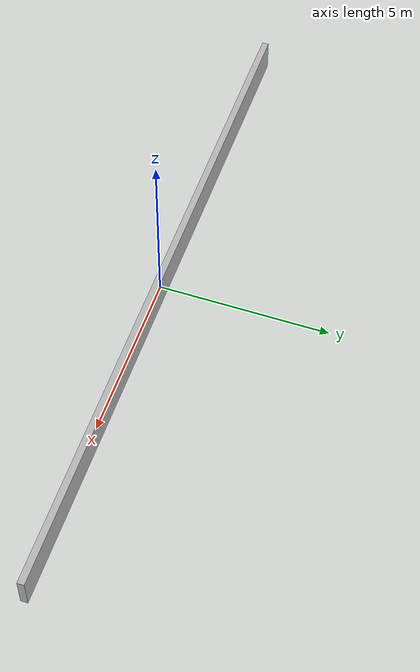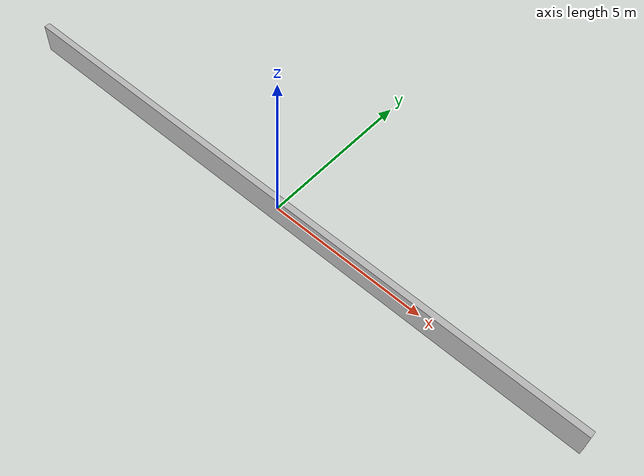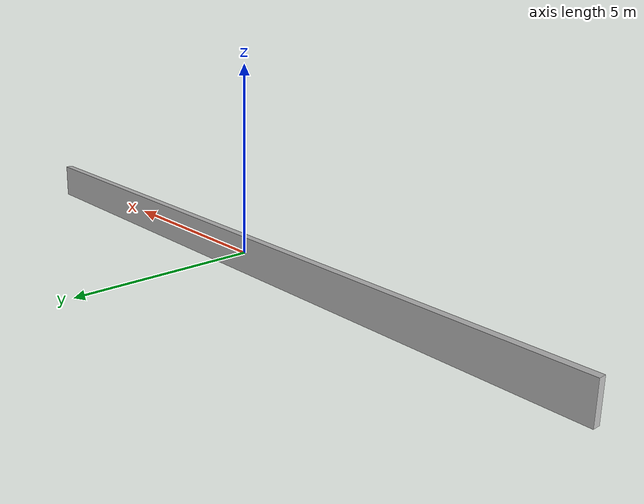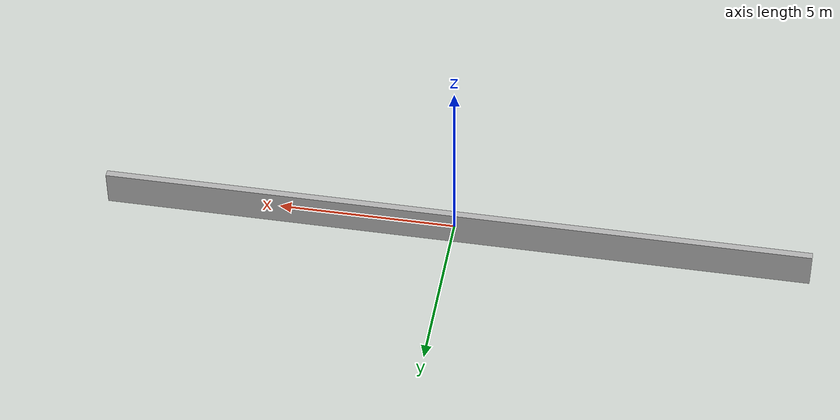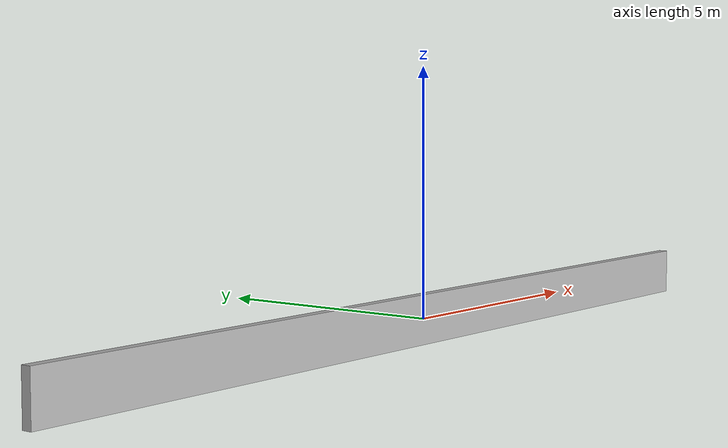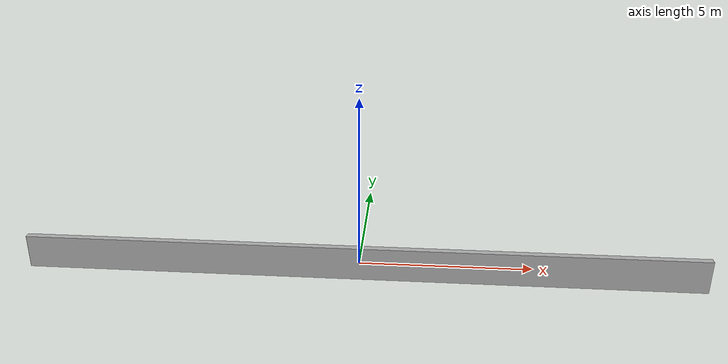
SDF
<?xml version='1.0'?>
<sdf version='1.6'>
  <model name='outer_bottom'>
    <static>true</static>
    <link name='link'>
      <collision name='collision'>
        <pose>0 0 0 0 0 0</pose>
        <geometry>
          <box>
            <size>20.0 0.2 1.0</size>
          </box>
        </geometry>
      </collision>
      <visual name='visual'>
        <pose>0 0 0 0 0 0</pose>
        <geometry>
          <box>
            <size>20.0 0.2 1.0</size>
          </box>
        </geometry>
      </visual>
    </link>
  </model>
</sdf>
